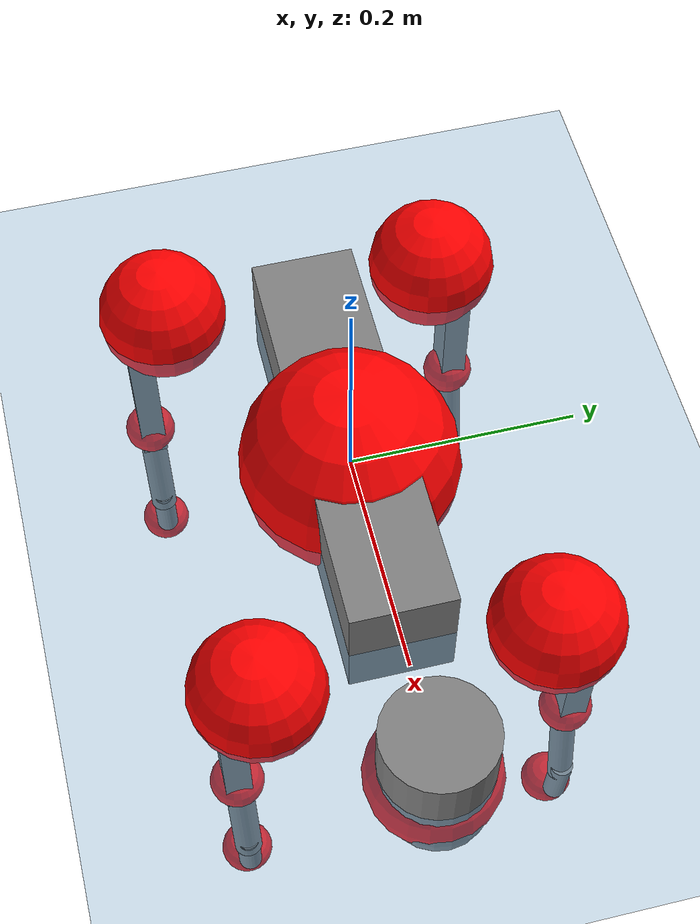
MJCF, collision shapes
<mujoco model="go2">
  <compiler angle="radian" assetdir="assets" balanceinertia="true" inertiafromgeom="false"/>

  <option timestep="0.005" density="1.2" viscosity="2e-05"/>

  <size nkey="1"/>

  <visual>
    <quality shadowsize="8192"/>
    <map shadowclip="0.5"/>
  </visual>

  <default>
    <default class="/">
      <geom contype="0" conaffinity="0" group="1" solref="-1000 -80"/>
      <site size="0.01 0.005 0.005" group="5"/>
      <general forcelimited="true" biastype="affine" gainprm="20" biasprm="0 -20 -0.5"/>
      <default class="go2">
        <joint armature="0.01" damping="0.01" frictionloss="0.2"/>
        <geom condim="1" margin="0.001"/>
        <default class="visual">
          <geom type="mesh" group="2"/>
        </default>
        <default class="collision">
          <geom group="3"/>
          <default class="foot">
            <geom size="0.022 0 0" condim="6" priority="1" friction="0.8 0.02 0.01" solimp="0.015 1 0.022"/>
          </default>
        </default>
        <default class="reward_collision_sphere">
          <geom group="5" rgba="1 0 0 1"/>
        </default>
      </default>
    </default>
  </default>

  <asset>
    <texture type="skybox" colorspace="auto" name="//unnamed_texture_0" builtin="gradient" rgb1="0.95 0.95 0.95" rgb2="0.95 0.95 0.95" width="100" height="600"/>
    <texture type="2d" colorspace="auto" name="texplane" builtin="checker" rgb1="0.345 0.575 0.748" rgb2="0.345 0.575 0.748" markrgb="1 1 1" width="512" height="512"/>
    <material name="MatPlane" class="/" texture="texplane" texuniform="true" texrepeat="2 2" specular="0.9"/>
    <material name="metal" class="/" rgba="0.9 0.95 0.95 1"/>
    <material name="black" class="/" rgba="0 0 0 1"/>
    <material name="white" class="/"/>
    <material name="gray" class="/" rgba="0.671705 0.692426 0.77427 1"/>
    <mesh name="base_0" class="/" file="base_0.obj"/>
    <mesh name="base_1" class="/" file="base_1.obj"/>
    <mesh name="base_2" class="/" file="base_2.obj"/>
    <mesh name="base_3" class="/" file="base_3.obj"/>
    <mesh name="base_4" class="/" file="base_4.obj"/>
    <mesh name="hip_0" class="/" file="hip_0.obj"/>
    <mesh name="hip_1" class="/" file="hip_1.obj"/>
    <mesh name="thigh_0" class="/" file="thigh_0.obj"/>
    <mesh name="thigh_1" class="/" file="thigh_1.obj"/>
    <mesh name="thigh_mirror_0" class="/" file="thigh_mirror_0.obj"/>
    <mesh name="thigh_mirror_1" class="/" file="thigh_mirror_1.obj"/>
    <mesh name="calf_0" class="/" file="calf_0.obj"/>
    <mesh name="calf_1" class="/" file="calf_1.obj"/>
    <mesh name="calf_mirror_0" class="/" file="calf_mirror_0.obj"/>
    <mesh name="calf_mirror_1" class="/" file="calf_mirror_1.obj"/>
    <mesh name="foot" class="/" file="foot.obj"/>
  </asset>

  <worldbody>
    <geom name="floor" class="/" size="100 100 0.125" type="plane" group="0" material="MatPlane"/>
    <light name="toplight_shadow" class="/" pos="0 0 5" dir="0.0990148 0.0990148 -0.990148" type="directional" ambient="0.04 0.04 0.04" diffuse="0.55 0.55 0.55" specular="0.12 0.12 0.12"/>
    <light name="toplight_fill" class="/" pos="0 0 5" dir="0.0990148 0.0990148 -0.990148" type="directional" castshadow="false" ambient="0.04 0.04 0.04" diffuse="0.3 0.3 0.3" specular="0.08 0.08 0.08"/>
    <body name="trunk" childclass="go2" pos="-0.00203329 -0.000242768 0.00102365" quat="1 0.000233168 -0.000208778 -0.000399584">
      <inertial pos="0.018754 -0.000429552 -0.0042802" quat="-0.00124656 0.711895 -0.00628293 0.702257" mass="6.18672" diaginertia="0.111256 0.142281 0.00899398"/>
      <joint name="//unnamed_joint_0" type="free" armature="0" damping="0" frictionloss="0"/>
      <geom name="//unnamed_geom_1" class="visual" material="black" mesh="base_0"/>
      <geom name="//unnamed_geom_2" class="visual" material="black" mesh="base_1"/>
      <geom name="//unnamed_geom_3" class="visual" material="black" mesh="base_2"/>
      <geom name="//unnamed_geom_4" class="visual" material="white" mesh="base_3"/>
      <geom name="//unnamed_geom_5" class="visual" material="gray" mesh="base_4"/>
      <geom name="trunk_1" class="collision" size="0.18154 0.0451196 0.0550121" type="box"/>
      <geom name="trunk_2" class="collision" size="0.0482563 0.0434306" pos="0.286498 0 0.0081498" type="cylinder"/>
      <geom name="trunk_3" class="collision" size="0.0453609" pos="0.29454 0 -0.0488988"/>
      <geom name="//unnamed_geom_9" class="reward_collision_sphere" size="0.0965125"/>
      <geom name="//unnamed_geom_10" class="reward_collision_sphere" size="0.0579075" pos="0.281472 0 -0.0366741"/>
      <site name="imu" pos="-0.026997 -0.00496336 0.0375679" size="0.00965125"/>
      <camera name="track" pos="0 -2.15028 0" quat="0.707107 0.707107 0 0" mode="trackcom"/>
      <camera name="ego_camera" pos="0.31364 0 0.0366741" quat="-0.5 -0.5 0.5 0.5"/>
      <body name="FL_hip" pos="0.194292 0.0506331 0.00143376" quat="1 -0.000561784 0.000570024 0.00050761">
        <inertial pos="-0.0075835 0.00312302 0.000546256" quat="0.49725 0.498926 0.505065 0.498723" mass="0.616743" diaginertia="0.000920294 0.000851705 0.000174257"/>
        <joint name="FL_hip_joint" pos="0 0 0" axis="0.999997 -0.00227017 -0.000900879" stiffness="0.00267409" range="-1.052 1.01843" armature="0.00998706" damping="0.00181882" frictionloss="0.183274"/>
        <geom name="//unnamed_geom_11" class="visual" material="metal" mesh="hip_0"/>
        <geom name="//unnamed_geom_12" class="visual" material="gray" mesh="hip_1"/>
        <geom name="//unnamed_geom_13" class="collision" size="0.0443958 0.0193025" pos="0 0.0860111 0" quat="0.707107 0.707107 0 0" type="cylinder"/>
        <geom name="//unnamed_geom_14" class="reward_collision_sphere" size="0.0579075" pos="0 0.0752597 0"/>
        <body name="FL_thigh" pos="-0.000373948 0.102929 0.00126155" quat="1 0.000118357 4.8494e-05 -5.0058e-05">
          <inertial pos="-0.00182635 -0.0231989 -0.0249642" quat="0.829508 0.0854744 -0.0216271 0.551492" mass="1.04261" diaginertia="0.00607459 0.00833867 0.000320267"/>
          <joint name="FL_thigh_joint" pos="0 0 0" axis="-0.00146034 0.999998 0.00137041" stiffness="0.0142905" range="-1.58834 3.51159" armature="0.00993136" damping="0" frictionloss="0.184718"/>
          <geom name="//unnamed_geom_15" class="visual" material="metal" mesh="thigh_0"/>
          <geom name="//unnamed_geom_16" class="visual" material="gray" mesh="thigh_1"/>
          <geom name="//unnamed_geom_17" class="collision" size="0.102786 0.0118228 0.0164071" pos="0 0 -0.0867954" quat="0.707107 0 0.707107 0" type="box"/>
          <body name="FL_calf" pos="-0.000266827 -0.000671146 -0.174268" quat="1 3.43264e-05 5.89499e-05 9.25773e-05">
            <inertial pos="0.00597124 -0.00114441 -0.115534" quat="0.709222 0.00823856 -0.00737175 0.704898" mass="0.214893" diaginertia="0.00154489 0.00207883 1.90835e-05"/>
            <joint name="FL_calf_joint" pos="0 0 0" axis="-0.00625498 0.999964 -0.00581089" range="-2.73633 -0.858842" armature="0.00998985" damping="0.0053331" frictionloss="0.188698"/>
            <geom name="//unnamed_geom_18" class="visual" material="gray" mesh="calf_0"/>
            <geom name="//unnamed_geom_19" class="visual" material="black" mesh="calf_1"/>
            <geom name="FL_calf0" class="collision" size="0.0115815 0.0579075" pos="0.00804206 0 -0.0488988" quat="0.994493 0 -0.104807 0" type="cylinder"/>
            <geom name="//unnamed_geom_21" class="collision" size="0.0106164 0.0313666" pos="0.0201051 0 -0.120617" quat="0.999688 0 0.0249974 0" type="cylinder"/>
            <geom name="//unnamed_geom_22" class="visual" pos="0 0 -0.173591" quat="1 0 0 0" material="black" mesh="foot"/>
            <geom name="FL_foot" class="foot" size="0.0148341" pos="-0.00201051 0 -0.173591"/>
            <geom name="//unnamed_geom_24" class="reward_collision_sphere" size="0.0241281"/>
            <geom name="//unnamed_geom_25" class="reward_collision_sphere" size="0.0241281" pos="-0.00201051 0 -0.173591"/>
            <site name="FL_foot" class="foot" pos="-0.00201051 0 -0.173591" size="0.00965125"/>
          </body>
        </body>
      </body>
      <body name="FR_hip" pos="0.194725 -0.0479266 0.000264098" quat="1 -0.000289535 0.000108305 -0.000349639">
        <inertial pos="-0.00404612 -0.00251105 -0.000188045" quat="0.498159 0.505579 0.499159 0.497059" mass="0.629656" diaginertia="0.000905633 0.000860172 0.000173416"/>
        <joint name="FR_hip_joint" pos="0 0 0" axis="0.999993 -0.00124497 0.00363591" range="-1.0599 1.05206" armature="0.00858628" damping="0.0206866" frictionloss="0.213293"/>
        <geom name="//unnamed_geom_26" class="visual" pos="0 2.2664e-09 9.72104e-08" quat="4.63268e-05 1 0 0" material="metal" mesh="hip_0"/>
        <geom name="//unnamed_geom_27" class="visual" pos="0 3.6741e-09 -2.40438e-07" quat="4.63268e-05 1 0 0" material="gray" mesh="hip_1"/>
        <geom name="//unnamed_geom_28" class="collision" size="0.0443958 0.0193025" pos="0 -0.0860111 0" quat="0.707107 0.707107 0 0" type="cylinder"/>
        <geom name="//unnamed_geom_29" class="reward_collision_sphere" size="0.0579075" pos="0 -0.0752597 0"/>
        <body name="FR_thigh" pos="0.000382123 -0.102087 0.00230302" quat="1 0.000861444 7.02169e-05 -3.99945e-05">
          <inertial pos="-0.00390924 0.021887 -0.0258169" quat="0.551938 -0.0221654 0.0838333 0.829364" mass="1.01854" diaginertia="0.00617781 0.00860177 0.000316012"/>
          <joint name="FR_thigh_joint" pos="0 0 0" axis="0.00130734 -0.999995 0.00301194" range="-3.47581 1.59016" armature="0.00973113" damping="0.012348" frictionloss="0.183406"/>
          <geom name="//unnamed_geom_30" class="visual" material="metal" mesh="thigh_mirror_0"/>
          <geom name="//unnamed_geom_31" class="visual" material="gray" mesh="thigh_mirror_1"/>
          <geom name="//unnamed_geom_32" class="collision" size="0.102786 0.0118228 0.0164071" pos="0 0 -0.0867954" quat="0.707107 0 0.707107 0" type="box"/>
          <body name="FR_calf" pos="-0.000404387 0.00053483 -0.173249" quat="1 1.07051e-06 1.84776e-06 7.74302e-06">
            <inertial pos="0.00563416 0.000671274 -0.114724" quat="0.702091 -0.00503812 0.000581467 0.712069" mass="0.21841" diaginertia="0.0015764 0.0021211 1.93726e-05"/>
            <joint name="FR_calf_joint" pos="0 0 0" axis="0.00642869 -0.99996 0.0061513" range="0.835531 2.71386" armature="0.00978922" damping="0.00749448" frictionloss="0.188901"/>
            <geom name="//unnamed_geom_33" class="visual" material="gray" mesh="calf_mirror_0"/>
            <geom name="//unnamed_geom_34" class="visual" material="black" mesh="calf_mirror_1"/>
            <geom name="FR_calf0" class="collision" size="0.0125466 0.0579075" pos="0.0100526 0 -0.0488988" quat="0.995004 0 -0.0998334 0" type="cylinder"/>
            <geom name="//unnamed_geom_36" class="collision" size="0.0106164 0.0313666" pos="0.0201051 0 -0.120617" quat="0.999688 0 0.0249974 0" type="cylinder"/>
            <geom name="//unnamed_geom_37" class="visual" pos="0 0 -0.173591" quat="1 0 0 0" material="black" mesh="foot"/>
            <geom name="FR_foot" class="foot" size="0.0227909" pos="-0.00201051 0 -0.173591"/>
            <geom name="//unnamed_geom_39" class="reward_collision_sphere" size="0.0241281"/>
            <geom name="//unnamed_geom_40" class="reward_collision_sphere" size="0.0241281" pos="-0.00201051 0 -0.173591"/>
            <site name="FR_foot" class="foot" pos="-0.00201051 0 -0.173591" size="0.00965125"/>
          </body>
        </body>
      </body>
      <body name="RL_hip" pos="-0.193347 0.0487723 -0.000565946" quat="0.999999 -0.000257362 0.000910686 -0.000777087">
        <inertial pos="0.00730719 0.00186673 0.000398638" quat="0.505334 0.498204 0.497154 0.499268" mass="0.608293" diaginertia="0.000907508 0.000862138 0.000173835"/>
        <joint name="RL_hip_joint" pos="0 0 0" axis="-0.999874 0.0151333 0.00468969" range="-1.05046 1.05668" armature="0.00963511" damping="0.0123685" frictionloss="0.183171"/>
        <geom name="//unnamed_geom_41" class="visual" pos="-1.65762e-09 0 -3.24931e-07" quat="4.63268e-05 0 1 0" material="metal" mesh="hip_0"/>
        <geom name="//unnamed_geom_42" class="visual" pos="-2.6872e-09 0 -2.88168e-07" quat="4.63268e-05 0 1 0" material="gray" mesh="hip_1"/>
        <geom name="//unnamed_geom_43" class="collision" size="0.0443958 0.0193025" pos="0 0.0860111 0" quat="0.707107 0.707107 0 0" type="cylinder"/>
        <geom name="//unnamed_geom_44" class="reward_collision_sphere" size="0.0579075" pos="0 0.0752597 0"/>
        <body name="RL_thigh" pos="-0.00193256 0.10119 0.000106816" quat="1 0.000795876 -0.0004973 0.00024546">
          <inertial pos="-0.0034424 -0.0240845 -0.0269448" quat="0.827342 0.0793861 -0.0220846 0.555622" mass="1.01903" diaginertia="0.00604986 0.00829805 0.000312065"/>
          <joint name="RL_thigh_joint" pos="0 0 0" axis="0.000812338 0.999993 -0.00351372" stiffness="0.00259196" range="-0.531361 4.5292" armature="0.00963195" damping="0" frictionloss="0.202407"/>
          <geom name="//unnamed_geom_45" class="visual" material="metal" mesh="thigh_0"/>
          <geom name="//unnamed_geom_46" class="visual" material="gray" mesh="thigh_1"/>
          <geom name="//unnamed_geom_47" class="collision" size="0.102786 0.0118228 0.0164071" pos="0 0 -0.0867954" quat="0.707107 0 0.707107 0" type="box"/>
          <body name="RL_calf" pos="0.000695497 -0.00132258 -0.174921" quat="1 4.81325e-05 5.3274e-05 0.000108557">
            <inertial pos="0.0062626 -0.00067176 -0.115641" quat="0.710644 0.00167687 -0.00445923 0.703536" mass="0.217859" diaginertia="0.00152595 0.00209865 1.90584e-05"/>
            <joint name="RL_calf_joint" pos="0 0 0" axis="0.000804502 0.99998 0.00633824" stiffness="0.00135766" range="-2.70885 -0.833967" armature="0.0100274" damping="0" frictionloss="0.195897"/>
            <geom name="//unnamed_geom_48" class="visual" material="gray" mesh="calf_0"/>
            <geom name="//unnamed_geom_49" class="visual" material="black" mesh="calf_1"/>
            <geom name="RL_calf0" class="collision" size="0.0125466 0.0579075" pos="0.0100526 0 -0.0488988" quat="0.995004 0 -0.0998334 0" type="cylinder"/>
            <geom name="//unnamed_geom_51" class="collision" size="0.0106164 0.0313666" pos="0.0201051 0 -0.120617" quat="0.999688 0 0.0249974 0" type="cylinder"/>
            <geom name="//unnamed_geom_52" class="visual" pos="0 0 -0.173591" quat="1 0 0 0" material="black" mesh="foot"/>
            <geom name="RL_foot" class="foot" size="0.0196059" pos="-0.00201051 0 -0.173591"/>
            <geom name="//unnamed_geom_54" class="reward_collision_sphere" size="0.0241281"/>
            <geom name="//unnamed_geom_55" class="reward_collision_sphere" size="0.0241281" pos="-0.00201051 0 -0.173591"/>
            <site name="RL_foot" class="foot" pos="-0.00201051 0 -0.173591" size="0.00965125"/>
          </body>
        </body>
      </body>
      <body name="RR_hip" pos="-0.194646 -0.0527074 -0.00147833" quat="1 1.86333e-05 -5.37192e-05 -3.19104e-06">
        <inertial pos="0.00544396 -0.00100952 -2.81162e-05" quat="0.493399 0.502447 0.496376 0.507656" mass="0.612982" diaginertia="0.000905746 0.000857664 0.000175507"/>
        <joint name="RR_hip_joint" pos="0 0 0" axis="-1 0.000680786 0.000181082" stiffness="9.45097e-06" range="-1.04201 1.04448" armature="0.0106837" damping="0.0175367" frictionloss="0.17905"/>
        <geom name="//unnamed_geom_56" class="visual" pos="1.66004e-09 2.2664e-09 -4.22142e-07" quat="2.14617e-09 4.63268e-05 4.63268e-05 -1" material="metal" mesh="hip_0"/>
        <geom name="//unnamed_geom_57" class="visual" pos="2.68121e-09 3.6741e-09 -4.77294e-08" quat="2.14617e-09 4.63268e-05 4.63268e-05 -1" material="gray" mesh="hip_1"/>
        <geom name="//unnamed_geom_58" class="collision" size="0.0443958 0.0193025" pos="0 -0.0860111 0" quat="0.707107 0.707107 0 0" type="cylinder"/>
        <geom name="//unnamed_geom_59" class="reward_collision_sphere" size="0.0579075" pos="0 -0.0752597 0"/>
        <body name="RR_thigh" pos="0.00031352 -0.1031 -0.00248554" quat="1 3.48736e-05 -5.12505e-06 6.24566e-05">
          <inertial pos="-0.00350052 0.024799 -0.0268027" quat="0.552101 -0.0198388 0.0853064 0.829165" mass="1.06036" diaginertia="0.00626344 0.00849029 0.000313155"/>
          <joint name="RR_thigh_joint" pos="0 0 0" axis="0.000933274 -1 -0.000268001" range="-4.57244 0.519018" armature="0.00931619" damping="0.019929" frictionloss="0.19859"/>
          <geom name="//unnamed_geom_60" class="visual" material="metal" mesh="thigh_mirror_0"/>
          <geom name="//unnamed_geom_61" class="visual" material="gray" mesh="thigh_mirror_1"/>
          <geom name="//unnamed_geom_62" class="collision" size="0.102786 0.0118228 0.0164071" pos="0 0 -0.0867954" quat="0.707107 0 0.707107 0" type="box"/>
          <body name="RR_calf" pos="-0.00210679 -0.000982136 -0.174632" quat="1 -4.74216e-05 7.44221e-06 0.000195604">
            <inertial pos="0.00842384 0.000513804 -0.116099" quat="0.700894 -0.00549791 0.00498199 0.713226" mass="0.21714" diaginertia="0.00147712 0.00203573 1.86013e-05"/>
            <joint name="RR_calf_joint" pos="0 0 0" axis="-0.00557883 -0.999979 -0.00321528" range="0.847658 2.77312" armature="0.00923838" damping="0.0133955" frictionloss="0.187078"/>
            <geom name="//unnamed_geom_63" class="visual" material="gray" mesh="calf_mirror_0"/>
            <geom name="//unnamed_geom_64" class="visual" material="black" mesh="calf_mirror_1"/>
            <geom name="RR_calf0" class="collision" size="0.0125466 0.0579075" pos="0.0100526 0 -0.0488988" quat="0.995004 0 -0.0998334 0" type="cylinder"/>
            <geom name="//unnamed_geom_66" class="collision" size="0.0106164 0.0313666" pos="0.0201051 0 -0.120617" quat="0.999688 0 0.0249974 0" type="cylinder"/>
            <geom name="//unnamed_geom_67" class="visual" pos="0 0 -0.173591" quat="1 0 0 0" material="black" mesh="foot"/>
            <geom name="RR_foot" class="foot" size="0.0229926" pos="-0.00201051 0 -0.173591"/>
            <geom name="//unnamed_geom_69" class="reward_collision_sphere" size="0.0241281"/>
            <geom name="//unnamed_geom_70" class="reward_collision_sphere" size="0.0241281" pos="-0.00201051 0 -0.173591"/>
            <site name="RR_foot" class="foot" pos="-0.00201051 0 -0.173591" size="0.00965125"/>
          </body>
        </body>
      </body>
    </body>
  </worldbody>

  <contact>
    <pair class="/" geom1="floor" geom2="FL_foot" name="//unnamed_contact_0"/>
    <pair class="/" geom1="floor" geom2="FR_foot" name="//unnamed_contact_1"/>
    <pair class="/" geom1="floor" geom2="RL_foot" name="//unnamed_contact_2"/>
    <pair class="/" geom1="floor" geom2="RR_foot" name="//unnamed_contact_3"/>
  </contact>

  <actuator>
    <general name="FL_hip" class="/" joint="FL_hip_joint" forcerange="-22.4882 22.4882" gainprm="19.4275" biasprm="0 -19.4275 -0.484999"/>
    <general name="FL_thigh" class="/" joint="FL_thigh_joint" forcerange="-23.5659 23.5659" gainprm="19.4275" biasprm="0 -19.4275 -0.484999"/>
    <general name="FL_calf" class="/" joint="FL_calf_joint" forcerange="-43.8671 43.8671" gainprm="19.4275" biasprm="0 -19.4275 -0.484999"/>
    <general name="FR_hip" class="/" joint="FR_hip_joint" forcerange="-24.7676 24.7676" gainprm="19.4275" biasprm="0 -19.4275 -0.484999"/>
    <general name="FR_thigh" class="/" joint="FR_thigh_joint" forcerange="-22.9389 22.9389" gainprm="19.4275" biasprm="0 -19.4275 -0.484999"/>
    <general name="FR_calf" class="/" joint="FR_calf_joint" forcerange="-42.5552 42.5552" gainprm="19.4275" biasprm="0 -19.4275 -0.484999"/>
    <general name="RL_hip" class="/" joint="RL_hip_joint" forcerange="-22.4167 22.4167" gainprm="19.4275" biasprm="0 -19.4275 -0.484999"/>
    <general name="RL_thigh" class="/" joint="RL_thigh_joint" forcerange="-22.4898 22.4898" gainprm="19.4275" biasprm="0 -19.4275 -0.484999"/>
    <general name="RL_calf" class="/" joint="RL_calf_joint" forcerange="-44.7543 44.7543" gainprm="19.4275" biasprm="0 -19.4275 -0.484999"/>
    <general name="RR_hip" class="/" joint="RR_hip_joint" forcerange="-23.3162 23.3162" gainprm="19.4275" biasprm="0 -19.4275 -0.484999"/>
    <general name="RR_thigh" class="/" joint="RR_thigh_joint" forcerange="-23.5777 23.5777" gainprm="19.4275" biasprm="0 -19.4275 -0.484999"/>
    <general name="RR_calf" class="/" joint="RR_calf_joint" forcerange="-47.0149 47.0149" gainprm="19.4275" biasprm="0 -19.4275 -0.484999"/>
  </actuator>

  <sensor>
    <gyro site="imu" name="imu_angular_velocity"/>
    <velocimeter site="imu" name="imu_linear_velocity"/>
    <framelinvel objtype="site" objname="FL_foot" name="FL_foot_global_linear_velocity"/>
    <framelinvel objtype="site" objname="FR_foot" name="FR_foot_global_linear_velocity"/>
    <framelinvel objtype="site" objname="RL_foot" name="RL_foot_global_linear_velocity"/>
    <framelinvel objtype="site" objname="RR_foot" name="RR_foot_global_linear_velocity"/>
  </sensor>

  <keyframe>
    <key name="home" qpos="0 0 0.325 1 0 0 0 0.1 0.8 -1.5 -0.1 -0.8 1.5 -0.1 0.8 -1.5 0.1 -0.8 1.5"/>
  </keyframe>
</mujoco>
